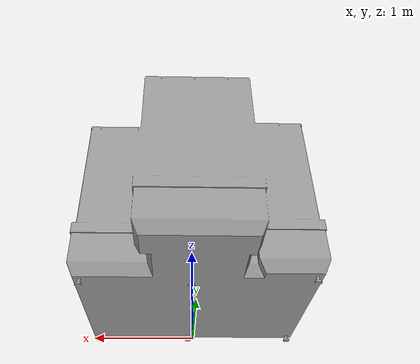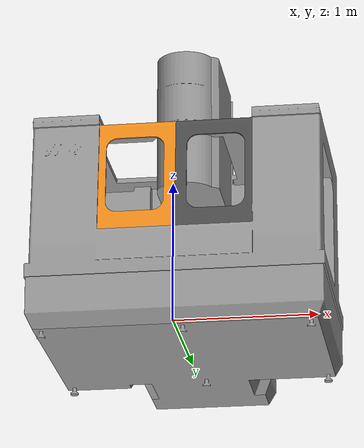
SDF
<sdf version='1.6'>
  <model name='HAAS_VF2'>
    <link name='HAAS_VF2_base'>
      <pose frame=''>0 0 0 1.57079632679 -0 0</pose>
      <inertial>
        <pose frame=''>0 0 -1 0 0.261799 0</pose>
        <mass>14879</mass>
        <inertia>
          <ixx>2964.3</ixx>
          <ixy>1.7344</ixy>
          <ixz>-27.292</ixz>
          <iyy>4409.9</iyy>
          <iyz>-1.747</iyz>
          <izz>3079.7</izz>
        </inertia>
      </inertial>
      <collision name='HAAS_VF2_base_collision'>
        <pose frame=''>-1.05 0 -2.1 0 -0 0</pose>
        <geometry>
          <mesh>
            <scale>.001 .001 .001</scale>
            <uri>model://HAAS_VF2/meshes/base_collision.STL</uri>
          </mesh>
        </geometry>
      </collision>
      <visual name='HAAS_VF2_base_visual'>
        <pose frame=''>0 0 0 0 -0 0</pose>
        <geometry>
          <mesh>
            <scale>.001 .001 .001</scale>
            <uri>model://HAAS_VF2/meshes/CNC_VF2_base.dae</uri>
          </mesh>
        </geometry>
        <material>
          <script>
            <uri>file://media/materials/scripts/gazebo.material</uri>
            <name>Gazebo/Grey</name>
          </script>
        </material>
      </visual>
    </link>
    <link name='Door_left'>
      <pose frame=''>0 0.033372 0.5001 1.5708 -0 0</pose>
      <inertial>
        <pose frame=''>-0.285 0.58552 -0.080585 0 -0 0</pose>
        <mass>5.2116</mass>
        <inertia>
          <ixx>0.80899</ixx>
          <ixy>0</ixy>
          <ixz>0</ixz>
          <iyy>0.20392</iyy>
          <iyz>0.12453</iyz>
          <izz>0.95521</izz>
        </inertia>
      </inertial>
      <collision name='Door_left_collision'>
        <pose frame=''>0 0 0 0 -0 0</pose>
        <geometry>
          <mesh>
            <scale>1 1 1</scale>
            <uri>model://HAAS_VF2/meshes/Door.dae</uri>
          </mesh>
        </geometry>
      </collision>
      <visual name='Door_left_visual'>
        <pose frame=''>0 0 0 0 -0 0</pose>
        <geometry>
          <mesh>
            <scale>1 1 1</scale>
            <uri>model://HAAS_VF2/meshes/Door.dae</uri>
          </mesh>
        </geometry>
        <material>
          <script>
            <uri>file://media/materials/scripts/gazebo.material</uri>
            <name>Gazebo/Orange</name>
          </script>
          <ambient>0.996078 0.47451 0.0196078 1</ambient>
        </material>
      </visual>
    </link>
    <joint name='door_left' type='prismatic'>
      <child>Door_left</child>
      <parent>HAAS_VF2_base</parent>
      <axis>
        <xyz>1 0 0</xyz>
        <limit>
          <lower>0</lower>
          <upper>0</upper>
          <effort>0</effort>
          <velocity>0</velocity>
        </limit>
        <dynamics>
          <spring_reference>0</spring_reference>
          <spring_stiffness>0</spring_stiffness>
        </dynamics>
        <use_parent_model_frame>1</use_parent_model_frame>
      </axis>
    </joint>
    <link name='Door_right'>
      <pose frame=''>.57 0.033372 0.5001 1.5708 -0 0</pose>
      <inertial>
        <pose frame=''>-0.285 0.58552 -0.080585 0 -0 0</pose>
        <mass>5.2116</mass>
        <inertia>
          <ixx>0.80899</ixx>
          <ixy>0</ixy>
          <ixz>0</ixz>
          <iyy>0.20392</iyy>
          <iyz>0.12453</iyz>
          <izz>0.95521</izz>
        </inertia>
      </inertial>
      <collision name='Door_right_collision'>
        <pose frame=''>0 0 0 0 -0 0</pose>
        <geometry>
          <mesh>
            <scale>1 1 1</scale>
            <uri>model://HAAS_VF2/meshes/Door.dae</uri>
            -->
          </mesh>
        </geometry>
      </collision>
      <visual name='Door_right_visual'>
        <pose frame=''>0 0 0 0 -0 0</pose>
        <geometry>
          <mesh>
            <scale>1 1 1</scale>
            <uri>model://HAAS_VF2/meshes/Door.dae</uri>
          </mesh>
        </geometry>
        <material>
          <script>
            <uri>file://media/materials/scripts/gazebo.material</uri>
            <name>Gazebo/DarkGrey</name>
          </script>
        </material>
      </visual>
    </link>
    <joint name='door_right' type='prismatic'>
      <child>Door_right</child>
      <parent>HAAS_VF2_base</parent>
      <axis>
        <xyz>1 0 0</xyz>
        <limit>
          <lower>0</lower>
          <upper>0</upper>
          <effort>0</effort>
          <velocity>0</velocity>
        </limit>
        <dynamics>
          <spring_reference>0</spring_reference>
          <spring_stiffness>0</spring_stiffness>
        </dynamics>
        <use_parent_model_frame>1</use_parent_model_frame>
      </axis>
    </joint>
  </model>
</sdf>
